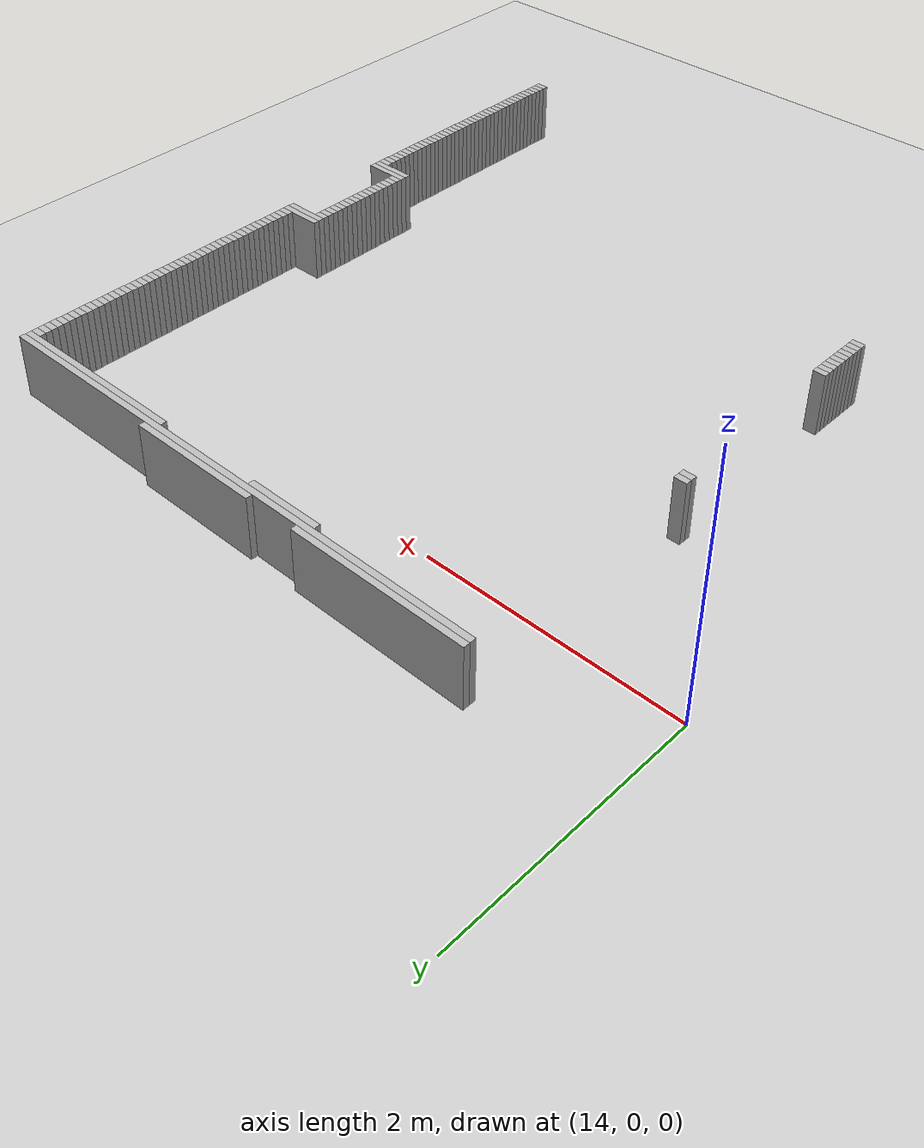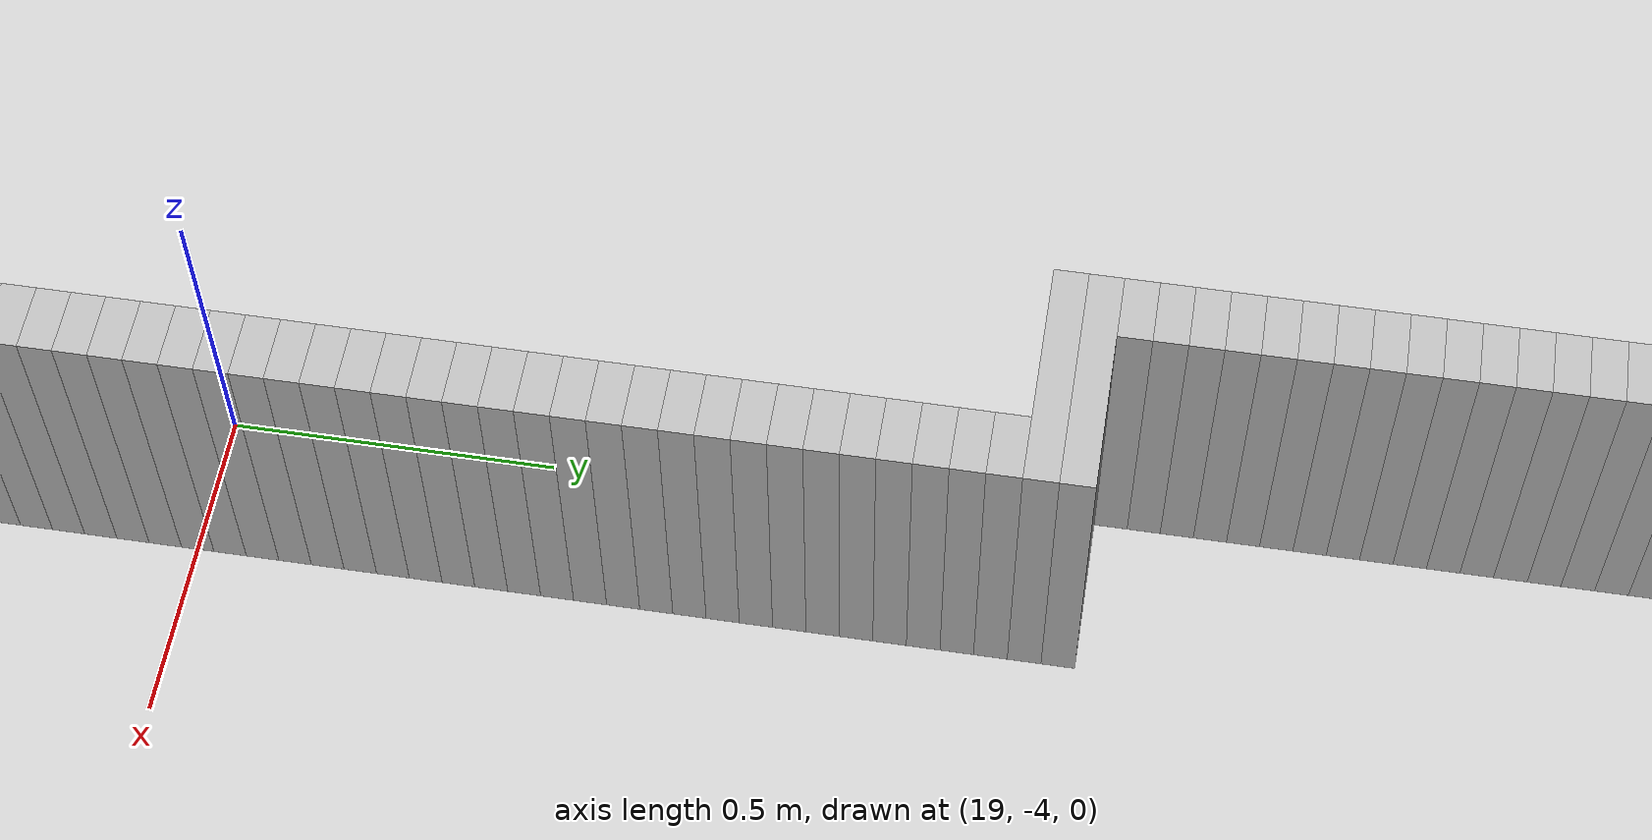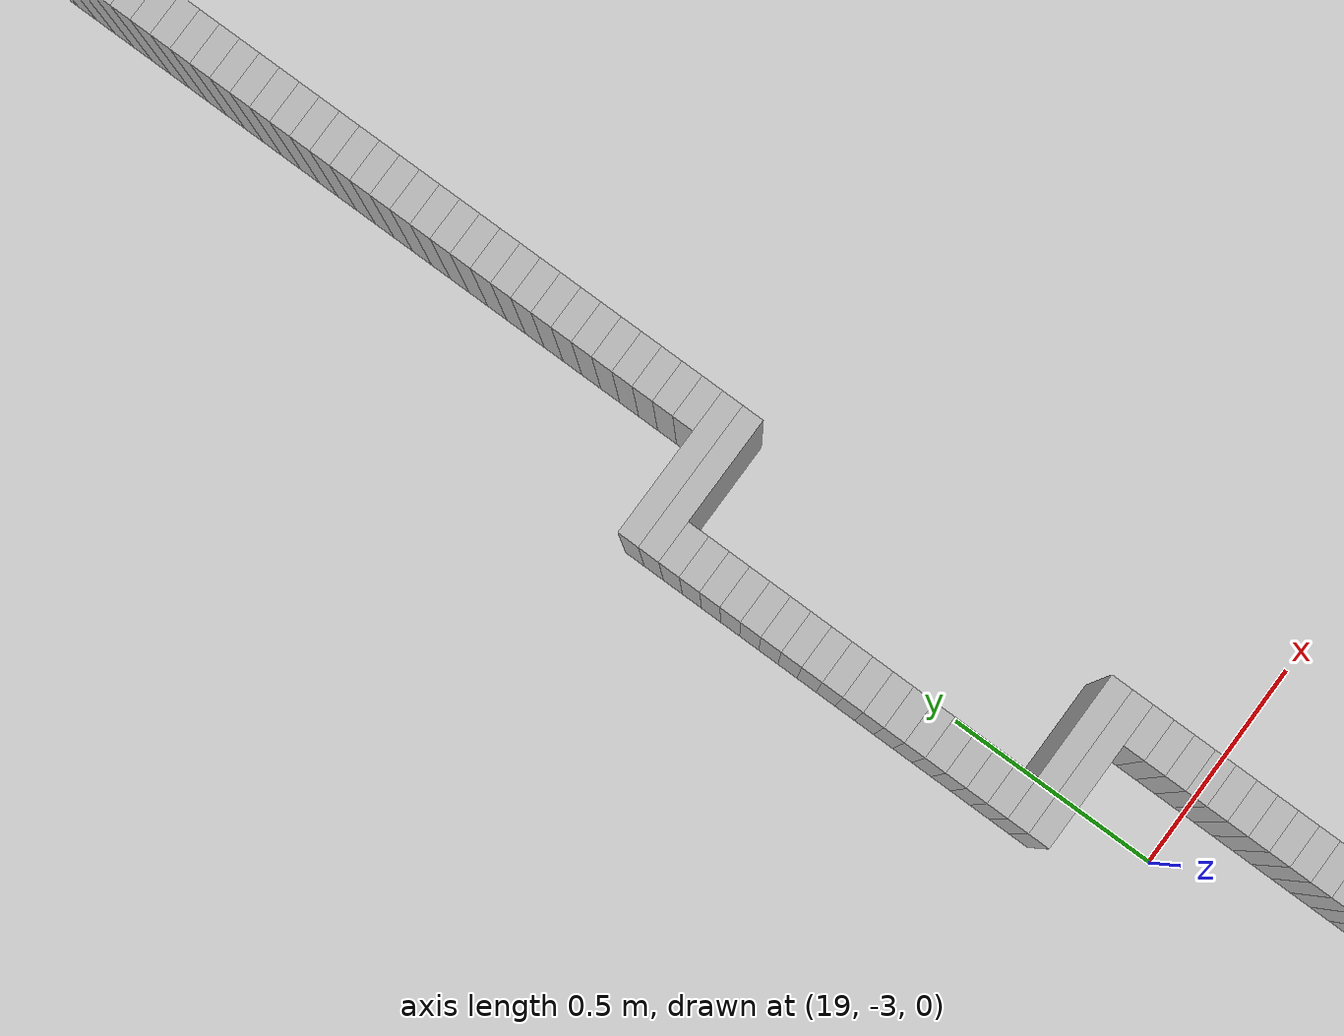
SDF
<sdf version="1.6">
 <world name="optimized_map_world">
  <include><uri>model://sun</uri></include>
  <include><uri>model://ground_plane</uri></include>
  <model name="obstacle_9">
   <static>true</static>
   <link name="link">
    <collision name="collision">
     <geometry><box><size>1.4000000000000001 0.05 0.5</size></box></geometry>
    </collision>
    <visual name="visual"><geometry><box><size>1.4000000000000001 0.05 0.5</size></box></geometry></visual>
   </link>
   <pose>15.675 0.75 0.25 0 0 0</pose>
  </model>
  <model name="obstacle_10">
   <static>true</static>
   <link name="link">
    <collision name="collision"><geometry><box><size>1.05 0.05 0.5</size></box></geometry></collision>
    <visual name="visual"><geometry><box><size>1.05 0.05 0.5</size></box></geometry></visual>
   </link>
   <pose>17.3 0.75 0.25 0 0 0</pose>
  </model>
  <model name="obstacle_15">
   <static>true</static>
   <link name="link">
    <collision name="collision"><geometry><box><size>4.25 0.05 0.5</size></box></geometry></collision>
    <visual name="visual"><geometry><box><size>4.25 0.05 0.5</size></box></geometry></visual>
   </link>
   <pose>17.100000000000005 0.6999999999999993 0.25 0 0 0</pose>
  </model>
  <model name="obstacle_19">
   <static>true</static>
   <link name="link">
    <collision name="collision">
     <geometry><box><size>0.6000000000000001 0.05 0.5</size></box></geometry>
    </collision>
    <visual name="visual"><geometry><box><size>0.6000000000000001 0.05 0.5</size></box></geometry></visual>
   </link>
   <pose>16.575 0.6500000000000021 0.25 0 0 0</pose>
  </model>
  <model name="obstacle_20">
   <static>true</static>
   <link name="link">
    <collision name="collision"><geometry><box><size>1.5 0.05 0.5</size></box></geometry></collision>
    <visual name="visual"><geometry><box><size>1.5 0.05 0.5</size></box></geometry></visual>
   </link>
   <pose>18.475000000000005 0.6500000000000021 0.25 0 0 0</pose>
  </model>
  <model name="obstacle_25">
   <static>true</static>
   <link name="link">
    <collision name="collision"><geometry><box><size>0.1 0.05 0.5</size></box></geometry></collision>
    <visual name="visual"><geometry><box><size>0.1 0.05 0.5</size></box></geometry></visual>
   </link>
   <pose>19.175 0.6000000000000014 0.25 0 0 0</pose>
  </model>
  <model name="obstacle_27">
   <static>true</static>
   <link name="link">
    <collision name="collision"><geometry><box><size>0.1 0.05 0.5</size></box></geometry></collision>
    <visual name="visual"><geometry><box><size>0.1 0.05 0.5</size></box></geometry></visual>
   </link>
   <pose>19.175 0.5500000000000007 0.25 0 0 0</pose>
  </model>
  <model name="obstacle_29">
   <static>true</static>
   <link name="link">
    <collision name="collision"><geometry><box><size>0.1 0.05 0.5</size></box></geometry></collision>
    <visual name="visual"><geometry><box><size>0.1 0.05 0.5</size></box></geometry></visual>
   </link>
   <pose>19.175 0.5 0.25 0 0 0</pose>
  </model>
  <model name="obstacle_31">
   <static>true</static>
   <link name="link">
    <collision name="collision"><geometry><box><size>0.1 0.05 0.5</size></box></geometry></collision>
    <visual name="visual"><geometry><box><size>0.1 0.05 0.5</size></box></geometry></visual>
   </link>
   <pose>19.175 0.4499999999999993 0.25 0 0 0</pose>
  </model>
  <model name="obstacle_33">
   <static>true</static>
   <link name="link">
    <collision name="collision"><geometry><box><size>0.1 0.05 0.5</size></box></geometry></collision>
    <visual name="visual"><geometry><box><size>0.1 0.05 0.5</size></box></geometry></visual>
   </link>
   <pose>19.175 0.40000000000000213 0.25 0 0 0</pose>
  </model>
  <model name="obstacle_35">
   <static>true</static>
   <link name="link">
    <collision name="collision"><geometry><box><size>0.1 0.05 0.5</size></box></geometry></collision>
    <visual name="visual"><geometry><box><size>0.1 0.05 0.5</size></box></geometry></visual>
   </link>
   <pose>19.175 0.3500000000000014 0.25 0 0 0</pose>
  </model>
  <model name="obstacle_37">
   <static>true</static>
   <link name="link">
    <collision name="collision"><geometry><box><size>0.1 0.05 0.5</size></box></geometry></collision>
    <visual name="visual"><geometry><box><size>0.1 0.05 0.5</size></box></geometry></visual>
   </link>
   <pose>19.175 0.3000000000000007 0.25 0 0 0</pose>
  </model>
  <model name="obstacle_39">
   <static>true</static>
   <link name="link">
    <collision name="collision"><geometry><box><size>0.1 0.05 0.5</size></box></geometry></collision>
    <visual name="visual"><geometry><box><size>0.1 0.05 0.5</size></box></geometry></visual>
   </link>
   <pose>19.175 0.25 0.25 0 0 0</pose>
  </model>
  <model name="obstacle_41">
   <static>true</static>
   <link name="link">
    <collision name="collision"><geometry><box><size>0.1 0.05 0.5</size></box></geometry></collision>
    <visual name="visual"><geometry><box><size>0.1 0.05 0.5</size></box></geometry></visual>
   </link>
   <pose>19.175 0.1999999999999993 0.25 0 0 0</pose>
  </model>
  <model name="obstacle_43">
   <static>true</static>
   <link name="link">
    <collision name="collision"><geometry><box><size>0.1 0.05 0.5</size></box></geometry></collision>
    <visual name="visual"><geometry><box><size>0.1 0.05 0.5</size></box></geometry></visual>
   </link>
   <pose>19.175 0.15000000000000213 0.25 0 0 0</pose>
  </model>
  <model name="obstacle_45">
   <static>true</static>
   <link name="link">
    <collision name="collision"><geometry><box><size>0.1 0.05 0.5</size></box></geometry></collision>
    <visual name="visual"><geometry><box><size>0.1 0.05 0.5</size></box></geometry></visual>
   </link>
   <pose>19.175 0.10000000000000142 0.25 0 0 0</pose>
  </model>
  <model name="obstacle_47">
   <static>true</static>
   <link name="link">
    <collision name="collision"><geometry><box><size>0.1 0.05 0.5</size></box></geometry></collision>
    <visual name="visual"><geometry><box><size>0.1 0.05 0.5</size></box></geometry></visual>
   </link>
   <pose>19.175 0.05000000000000071 0.25 0 0 0</pose>
  </model>
  <model name="obstacle_49">
   <static>true</static>
   <link name="link">
    <collision name="collision"><geometry><box><size>0.1 0.05 0.5</size></box></geometry></collision>
    <visual name="visual"><geometry><box><size>0.1 0.05 0.5</size></box></geometry></visual>
   </link>
   <pose>19.175 0.0 0.25 0 0 0</pose>
  </model>
  <model name="obstacle_51">
   <static>true</static>
   <link name="link">
    <collision name="collision"><geometry><box><size>0.1 0.05 0.5</size></box></geometry></collision>
    <visual name="visual"><geometry><box><size>0.1 0.05 0.5</size></box></geometry></visual>
   </link>
   <pose>19.175 -0.05000000000000071 0.25 0 0 0</pose>
  </model>
  <model name="obstacle_53">
   <static>true</static>
   <link name="link">
    <collision name="collision"><geometry><box><size>0.1 0.05 0.5</size></box></geometry></collision>
    <visual name="visual"><geometry><box><size>0.1 0.05 0.5</size></box></geometry></visual>
   </link>
   <pose>19.175 -0.09999999999999787 0.25 0 0 0</pose>
  </model>
  <model name="obstacle_55">
   <static>true</static>
   <link name="link">
    <collision name="collision"><geometry><box><size>0.1 0.05 0.5</size></box></geometry></collision>
    <visual name="visual"><geometry><box><size>0.1 0.05 0.5</size></box></geometry></visual>
   </link>
   <pose>19.175 -0.14999999999999858 0.25 0 0 0</pose>
  </model>
  <model name="obstacle_57">
   <static>true</static>
   <link name="link">
    <collision name="collision"><geometry><box><size>0.1 0.05 0.5</size></box></geometry></collision>
    <visual name="visual"><geometry><box><size>0.1 0.05 0.5</size></box></geometry></visual>
   </link>
   <pose>19.175 -0.1999999999999993 0.25 0 0 0</pose>
  </model>
  <model name="obstacle_59">
   <static>true</static>
   <link name="link">
    <collision name="collision"><geometry><box><size>0.1 0.05 0.5</size></box></geometry></collision>
    <visual name="visual"><geometry><box><size>0.1 0.05 0.5</size></box></geometry></visual>
   </link>
   <pose>19.175 -0.25 0.25 0 0 0</pose>
  </model>
  <model name="obstacle_61">
   <static>true</static>
   <link name="link">
    <collision name="collision"><geometry><box><size>0.1 0.05 0.5</size></box></geometry></collision>
    <visual name="visual"><geometry><box><size>0.1 0.05 0.5</size></box></geometry></visual>
   </link>
   <pose>19.175 -0.3000000000000007 0.25 0 0 0</pose>
  </model>
  <model name="obstacle_63">
   <static>true</static>
   <link name="link">
    <collision name="collision"><geometry><box><size>0.1 0.05 0.5</size></box></geometry></collision>
    <visual name="visual"><geometry><box><size>0.1 0.05 0.5</size></box></geometry></visual>
   </link>
   <pose>19.175 -0.34999999999999787 0.25 0 0 0</pose>
  </model>
  <model name="obstacle_65">
   <static>true</static>
   <link name="link">
    <collision name="collision"><geometry><box><size>0.1 0.05 0.5</size></box></geometry></collision>
    <visual name="visual"><geometry><box><size>0.1 0.05 0.5</size></box></geometry></visual>
   </link>
   <pose>19.175 -0.3999999999999986 0.25 0 0 0</pose>
  </model>
  <model name="obstacle_67">
   <static>true</static>
   <link name="link">
    <collision name="collision"><geometry><box><size>0.1 0.05 0.5</size></box></geometry></collision>
    <visual name="visual"><geometry><box><size>0.1 0.05 0.5</size></box></geometry></visual>
   </link>
   <pose>19.175 -0.4499999999999993 0.25 0 0 0</pose>
  </model>
  <model name="obstacle_69">
   <static>true</static>
   <link name="link">
    <collision name="collision"><geometry><box><size>0.1 0.05 0.5</size></box></geometry></collision>
    <visual name="visual"><geometry><box><size>0.1 0.05 0.5</size></box></geometry></visual>
   </link>
   <pose>19.175 -0.5 0.25 0 0 0</pose>
  </model>
  <model name="obstacle_71">
   <static>true</static>
   <link name="link">
    <collision name="collision"><geometry><box><size>0.1 0.05 0.5</size></box></geometry></collision>
    <visual name="visual"><geometry><box><size>0.1 0.05 0.5</size></box></geometry></visual>
   </link>
   <pose>19.175 -0.5500000000000007 0.25 0 0 0</pose>
  </model>
  <model name="obstacle_73">
   <static>true</static>
   <link name="link">
    <collision name="collision"><geometry><box><size>0.1 0.05 0.5</size></box></geometry></collision>
    <visual name="visual"><geometry><box><size>0.1 0.05 0.5</size></box></geometry></visual>
   </link>
   <pose>19.175 -0.5999999999999979 0.25 0 0 0</pose>
  </model>
  <model name="obstacle_75">
   <static>true</static>
   <link name="link">
    <collision name="collision"><geometry><box><size>0.1 0.05 0.5</size></box></geometry></collision>
    <visual name="visual"><geometry><box><size>0.1 0.05 0.5</size></box></geometry></visual>
   </link>
   <pose>19.175 -0.6499999999999986 0.25 0 0 0</pose>
  </model>
  <model name="obstacle_77">
   <static>true</static>
   <link name="link">
    <collision name="collision"><geometry><box><size>0.1 0.05 0.5</size></box></geometry></collision>
    <visual name="visual"><geometry><box><size>0.1 0.05 0.5</size></box></geometry></visual>
   </link>
   <pose>19.175 -0.6999999999999993 0.25 0 0 0</pose>
  </model>
  <model name="obstacle_79">
   <static>true</static>
   <link name="link">
    <collision name="collision"><geometry><box><size>0.1 0.05 0.5</size></box></geometry></collision>
    <visual name="visual"><geometry><box><size>0.1 0.05 0.5</size></box></geometry></visual>
   </link>
   <pose>19.175 -0.75 0.25 0 0 0</pose>
  </model>
  <model name="obstacle_82">
   <static>true</static>
   <link name="link">
    <collision name="collision"><geometry><box><size>0.1 0.05 0.5</size></box></geometry></collision>
    <visual name="visual"><geometry><box><size>0.1 0.05 0.5</size></box></geometry></visual>
   </link>
   <pose>19.175 -0.8000000000000007 0.25 0 0 0</pose>
  </model>
  <model name="obstacle_86">
   <static>true</static>
   <link name="link">
    <collision name="collision"><geometry><box><size>0.1 0.05 0.5</size></box></geometry></collision>
    <visual name="visual"><geometry><box><size>0.1 0.05 0.5</size></box></geometry></visual>
   </link>
   <pose>19.175 -0.8499999999999979 0.25 0 0 0</pose>
  </model>
  <model name="obstacle_91">
   <static>true</static>
   <link name="link">
    <collision name="collision"><geometry><box><size>0.1 0.05 0.5</size></box></geometry></collision>
    <visual name="visual"><geometry><box><size>0.1 0.05 0.5</size></box></geometry></visual>
   </link>
   <pose>19.175 -0.8999999999999986 0.25 0 0 0</pose>
  </model>
  <model name="obstacle_97">
   <static>true</static>
   <link name="link">
    <collision name="collision"><geometry><box><size>0.1 0.05 0.5</size></box></geometry></collision>
    <visual name="visual"><geometry><box><size>0.1 0.05 0.5</size></box></geometry></visual>
   </link>
   <pose>19.175 -0.9499999999999993 0.25 0 0 0</pose>
  </model>
  <model name="obstacle_104">
   <static>true</static>
   <link name="link">
    <collision name="collision"><geometry><box><size>0.1 0.05 0.5</size></box></geometry></collision>
    <visual name="visual"><geometry><box><size>0.1 0.05 0.5</size></box></geometry></visual>
   </link>
   <pose>19.175 -1.0 0.25 0 0 0</pose>
  </model>
  <model name="obstacle_111">
   <static>true</static>
   <link name="link">
    <collision name="collision"><geometry><box><size>0.1 0.05 0.5</size></box></geometry></collision>
    <visual name="visual"><geometry><box><size>0.1 0.05 0.5</size></box></geometry></visual>
   </link>
   <pose>19.175 -1.0500000000000007 0.25 0 0 0</pose>
  </model>
  <model name="obstacle_118">
   <static>true</static>
   <link name="link">
    <collision name="collision"><geometry><box><size>0.1 0.05 0.5</size></box></geometry></collision>
    <visual name="visual"><geometry><box><size>0.1 0.05 0.5</size></box></geometry></visual>
   </link>
   <pose>19.175 -1.0999999999999979 0.25 0 0 0</pose>
  </model>
  <model name="obstacle_124">
   <static>true</static>
   <link name="link">
    <collision name="collision"><geometry><box><size>0.1 0.05 0.5</size></box></geometry></collision>
    <visual name="visual"><geometry><box><size>0.1 0.05 0.5</size></box></geometry></visual>
   </link>
   <pose>19.175 -1.1499999999999986 0.25 0 0 0</pose>
  </model>
  <model name="obstacle_128">
   <static>true</static>
   <link name="link">
    <collision name="collision"><geometry><box><size>0.1 0.05 0.5</size></box></geometry></collision>
    <visual name="visual"><geometry><box><size>0.1 0.05 0.5</size></box></geometry></visual>
   </link>
   <pose>14.975000000000001 -1.1999999999999993 0.25 0 0 0</pose>
  </model>
  <model name="obstacle_129">
   <static>true</static>
   <link name="link">
    <collision name="collision"><geometry><box><size>0.1 0.05 0.5</size></box></geometry></collision>
    <visual name="visual"><geometry><box><size>0.1 0.05 0.5</size></box></geometry></visual>
   </link>
   <pose>19.175 -1.1999999999999993 0.25 0 0 0</pose>
  </model>
  <model name="obstacle_132">
   <static>true</static>
   <link name="link">
    <collision name="collision"><geometry><box><size>0.1 0.05 0.5</size></box></geometry></collision>
    <visual name="visual"><geometry><box><size>0.1 0.05 0.5</size></box></geometry></visual>
   </link>
   <pose>14.975000000000001 -1.25 0.25 0 0 0</pose>
  </model>
  <model name="obstacle_133">
   <static>true</static>
   <link name="link">
    <collision name="collision"><geometry><box><size>0.1 0.05 0.5</size></box></geometry></collision>
    <visual name="visual"><geometry><box><size>0.1 0.05 0.5</size></box></geometry></visual>
   </link>
   <pose>19.175 -1.25 0.25 0 0 0</pose>
  </model>
  <model name="obstacle_137">
   <static>true</static>
   <link name="link">
    <collision name="collision"><geometry><box><size>0.1 0.05 0.5</size></box></geometry></collision>
    <visual name="visual"><geometry><box><size>0.1 0.05 0.5</size></box></geometry></visual>
   </link>
   <pose>19.175 -1.3000000000000007 0.25 0 0 0</pose>
  </model>
  <model name="obstacle_141">
   <static>true</static>
   <link name="link">
    <collision name="collision"><geometry><box><size>0.1 0.05 0.5</size></box></geometry></collision>
    <visual name="visual"><geometry><box><size>0.1 0.05 0.5</size></box></geometry></visual>
   </link>
   <pose>19.175 -1.3500000000000014 0.25 0 0 0</pose>
  </model>
  <model name="obstacle_145">
   <static>true</static>
   <link name="link">
    <collision name="collision"><geometry><box><size>0.1 0.05 0.5</size></box></geometry></collision>
    <visual name="visual"><geometry><box><size>0.1 0.05 0.5</size></box></geometry></visual>
   </link>
   <pose>19.175 -1.3999999999999986 0.25 0 0 0</pose>
  </model>
  <model name="obstacle_149">
   <static>true</static>
   <link name="link">
    <collision name="collision"><geometry><box><size>0.1 0.05 0.5</size></box></geometry></collision>
    <visual name="visual"><geometry><box><size>0.1 0.05 0.5</size></box></geometry></visual>
   </link>
   <pose>19.175 -1.4499999999999993 0.25 0 0 0</pose>
  </model>
  <model name="obstacle_153">
   <static>true</static>
   <link name="link">
    <collision name="collision"><geometry><box><size>0.1 0.05 0.5</size></box></geometry></collision>
    <visual name="visual"><geometry><box><size>0.1 0.05 0.5</size></box></geometry></visual>
   </link>
   <pose>19.175 -1.5 0.25 0 0 0</pose>
  </model>
  <model name="obstacle_157">
   <static>true</static>
   <link name="link">
    <collision name="collision"><geometry><box><size>0.1 0.05 0.5</size></box></geometry></collision>
    <visual name="visual"><geometry><box><size>0.1 0.05 0.5</size></box></geometry></visual>
   </link>
   <pose>19.175 -1.5500000000000007 0.25 0 0 0</pose>
  </model>
  <model name="obstacle_161">
   <static>true</static>
   <link name="link">
    <collision name="collision"><geometry><box><size>0.1 0.05 0.5</size></box></geometry></collision>
    <visual name="visual"><geometry><box><size>0.1 0.05 0.5</size></box></geometry></visual>
   </link>
   <pose>19.175 -1.6000000000000014 0.25 0 0 0</pose>
  </model>
  <model name="obstacle_165">
   <static>true</static>
   <link name="link">
    <collision name="collision"><geometry><box><size>0.1 0.05 0.5</size></box></geometry></collision>
    <visual name="visual"><geometry><box><size>0.1 0.05 0.5</size></box></geometry></visual>
   </link>
   <pose>19.175 -1.6499999999999986 0.25 0 0 0</pose>
  </model>
  <model name="obstacle_169">
   <static>true</static>
   <link name="link">
    <collision name="collision"><geometry><box><size>0.1 0.05 0.5</size></box></geometry></collision>
    <visual name="visual"><geometry><box><size>0.1 0.05 0.5</size></box></geometry></visual>
   </link>
   <pose>19.175 -1.6999999999999993 0.25 0 0 0</pose>
  </model>
  <model name="obstacle_173">
   <static>true</static>
   <link name="link">
    <collision name="collision">
     <geometry><box><size>0.35000000000000003 0.05 0.5</size></box></geometry>
    </collision>
    <visual name="visual"><geometry><box><size>0.35000000000000003 0.05 0.5</size></box></geometry></visual>
   </link>
   <pose>19.05 -1.75 0.25 0 0 0</pose>
  </model>
  <model name="obstacle_177">
   <static>true</static>
   <link name="link">
    <collision name="collision">
     <geometry><box><size>0.35000000000000003 0.05 0.5</size></box></geometry>
    </collision>
    <visual name="visual"><geometry><box><size>0.35000000000000003 0.05 0.5</size></box></geometry></visual>
   </link>
   <pose>19.05 -1.8000000000000007 0.25 0 0 0</pose>
  </model>
  <model name="obstacle_181">
   <static>true</static>
   <link name="link">
    <collision name="collision"><geometry><box><size>0.1 0.05 0.5</size></box></geometry></collision>
    <visual name="visual"><geometry><box><size>0.1 0.05 0.5</size></box></geometry></visual>
   </link>
   <pose>18.925 -1.8500000000000014 0.25 0 0 0</pose>
  </model>
  <model name="obstacle_185">
   <static>true</static>
   <link name="link">
    <collision name="collision"><geometry><box><size>0.1 0.05 0.5</size></box></geometry></collision>
    <visual name="visual"><geometry><box><size>0.1 0.05 0.5</size></box></geometry></visual>
   </link>
   <pose>18.925 -1.8999999999999986 0.25 0 0 0</pose>
  </model>
  <model name="obstacle_189">
   <static>true</static>
   <link name="link">
    <collision name="collision"><geometry><box><size>0.1 0.05 0.5</size></box></geometry></collision>
    <visual name="visual"><geometry><box><size>0.1 0.05 0.5</size></box></geometry></visual>
   </link>
   <pose>18.925 -1.9499999999999993 0.25 0 0 0</pose>
  </model>
  <model name="obstacle_193">
   <static>true</static>
   <link name="link">
    <collision name="collision"><geometry><box><size>0.1 0.05 0.5</size></box></geometry></collision>
    <visual name="visual"><geometry><box><size>0.1 0.05 0.5</size></box></geometry></visual>
   </link>
   <pose>18.925 -2.0 0.25 0 0 0</pose>
  </model>
  <model name="obstacle_197">
   <static>true</static>
   <link name="link">
    <collision name="collision"><geometry><box><size>0.1 0.05 0.5</size></box></geometry></collision>
    <visual name="visual"><geometry><box><size>0.1 0.05 0.5</size></box></geometry></visual>
   </link>
   <pose>18.925 -2.0500000000000007 0.25 0 0 0</pose>
  </model>
  <model name="obstacle_201">
   <static>true</static>
   <link name="link">
    <collision name="collision"><geometry><box><size>0.1 0.05 0.5</size></box></geometry></collision>
    <visual name="visual"><geometry><box><size>0.1 0.05 0.5</size></box></geometry></visual>
   </link>
   <pose>18.925 -2.1000000000000014 0.25 0 0 0</pose>
  </model>
  <model name="obstacle_205">
   <static>true</static>
   <link name="link">
    <collision name="collision"><geometry><box><size>0.1 0.05 0.5</size></box></geometry></collision>
    <visual name="visual"><geometry><box><size>0.1 0.05 0.5</size></box></geometry></visual>
   </link>
   <pose>18.925 -2.1499999999999986 0.25 0 0 0</pose>
  </model>
  <model name="obstacle_209">
   <static>true</static>
   <link name="link">
    <collision name="collision"><geometry><box><size>0.1 0.05 0.5</size></box></geometry></collision>
    <visual name="visual"><geometry><box><size>0.1 0.05 0.5</size></box></geometry></visual>
   </link>
   <pose>18.925 -2.1999999999999993 0.25 0 0 0</pose>
  </model>
  <model name="obstacle_213">
   <static>true</static>
   <link name="link">
    <collision name="collision"><geometry><box><size>0.1 0.05 0.5</size></box></geometry></collision>
    <visual name="visual"><geometry><box><size>0.1 0.05 0.5</size></box></geometry></visual>
   </link>
   <pose>18.925 -2.25 0.25 0 0 0</pose>
  </model>
  <model name="obstacle_217">
   <static>true</static>
   <link name="link">
    <collision name="collision"><geometry><box><size>0.1 0.05 0.5</size></box></geometry></collision>
    <visual name="visual"><geometry><box><size>0.1 0.05 0.5</size></box></geometry></visual>
   </link>
   <pose>18.925 -2.3000000000000007 0.25 0 0 0</pose>
  </model>
  <model name="obstacle_221">
   <static>true</static>
   <link name="link">
    <collision name="collision"><geometry><box><size>0.1 0.05 0.5</size></box></geometry></collision>
    <visual name="visual"><geometry><box><size>0.1 0.05 0.5</size></box></geometry></visual>
   </link>
   <pose>18.925 -2.3500000000000014 0.25 0 0 0</pose>
  </model>
  <model name="obstacle_225">
   <static>true</static>
   <link name="link">
    <collision name="collision"><geometry><box><size>0.1 0.05 0.5</size></box></geometry></collision>
    <visual name="visual"><geometry><box><size>0.1 0.05 0.5</size></box></geometry></visual>
   </link>
   <pose>18.925 -2.3999999999999986 0.25 0 0 0</pose>
  </model>
  <model name="obstacle_229">
   <static>true</static>
   <link name="link">
    <collision name="collision"><geometry><box><size>0.1 0.05 0.5</size></box></geometry></collision>
    <visual name="visual"><geometry><box><size>0.1 0.05 0.5</size></box></geometry></visual>
   </link>
   <pose>18.925 -2.4499999999999993 0.25 0 0 0</pose>
  </model>
  <model name="obstacle_233">
   <static>true</static>
   <link name="link">
    <collision name="collision"><geometry><box><size>0.1 0.05 0.5</size></box></geometry></collision>
    <visual name="visual"><geometry><box><size>0.1 0.05 0.5</size></box></geometry></visual>
   </link>
   <pose>18.925 -2.5 0.25 0 0 0</pose>
  </model>
  <model name="obstacle_237">
   <static>true</static>
   <link name="link">
    <collision name="collision"><geometry><box><size>0.1 0.05 0.5</size></box></geometry></collision>
    <visual name="visual"><geometry><box><size>0.1 0.05 0.5</size></box></geometry></visual>
   </link>
   <pose>18.925 -2.5500000000000007 0.25 0 0 0</pose>
  </model>
  <model name="obstacle_241">
   <static>true</static>
   <link name="link">
    <collision name="collision"><geometry><box><size>0.1 0.05 0.5</size></box></geometry></collision>
    <visual name="visual"><geometry><box><size>0.1 0.05 0.5</size></box></geometry></visual>
   </link>
   <pose>18.925 -2.6000000000000014 0.25 0 0 0</pose>
  </model>
  <model name="obstacle_245">
   <static>true</static>
   <link name="link">
    <collision name="collision"><geometry><box><size>0.1 0.05 0.5</size></box></geometry></collision>
    <visual name="visual"><geometry><box><size>0.1 0.05 0.5</size></box></geometry></visual>
   </link>
   <pose>18.925 -2.6499999999999986 0.25 0 0 0</pose>
  </model>
  <model name="obstacle_249">
   <static>true</static>
   <link name="link">
    <collision name="collision">
     <geometry><box><size>0.35000000000000003 0.05 0.5</size></box></geometry>
    </collision>
    <visual name="visual"><geometry><box><size>0.35000000000000003 0.05 0.5</size></box></geometry></visual>
   </link>
   <pose>19.05 -2.6999999999999993 0.25 0 0 0</pose>
  </model>
  <model name="obstacle_252">
   <static>true</static>
   <link name="link">
    <collision name="collision"><geometry><box><size>0.1 0.05 0.5</size></box></geometry></collision>
    <visual name="visual"><geometry><box><size>0.1 0.05 0.5</size></box></geometry></visual>
   </link>
   <pose>14.975000000000001 -2.75 0.25 0 0 0</pose>
  </model>
  <model name="obstacle_253">
   <static>true</static>
   <link name="link">
    <collision name="collision">
     <geometry><box><size>0.35000000000000003 0.05 0.5</size></box></geometry>
    </collision>
    <visual name="visual"><geometry><box><size>0.35000000000000003 0.05 0.5</size></box></geometry></visual>
   </link>
   <pose>19.05 -2.75 0.25 0 0 0</pose>
  </model>
  <model name="obstacle_256">
   <static>true</static>
   <link name="link">
    <collision name="collision"><geometry><box><size>0.1 0.05 0.5</size></box></geometry></collision>
    <visual name="visual"><geometry><box><size>0.1 0.05 0.5</size></box></geometry></visual>
   </link>
   <pose>14.975000000000001 -2.8000000000000007 0.25 0 0 0</pose>
  </model>
  <model name="obstacle_257">
   <static>true</static>
   <link name="link">
    <collision name="collision"><geometry><box><size>0.1 0.05 0.5</size></box></geometry></collision>
    <visual name="visual"><geometry><box><size>0.1 0.05 0.5</size></box></geometry></visual>
   </link>
   <pose>19.175 -2.8000000000000007 0.25 0 0 0</pose>
  </model>
  <model name="obstacle_260">
   <static>true</static>
   <link name="link">
    <collision name="collision"><geometry><box><size>0.1 0.05 0.5</size></box></geometry></collision>
    <visual name="visual"><geometry><box><size>0.1 0.05 0.5</size></box></geometry></visual>
   </link>
   <pose>14.975000000000001 -2.8500000000000014 0.25 0 0 0</pose>
  </model>
  <model name="obstacle_261">
   <static>true</static>
   <link name="link">
    <collision name="collision"><geometry><box><size>0.1 0.05 0.5</size></box></geometry></collision>
    <visual name="visual"><geometry><box><size>0.1 0.05 0.5</size></box></geometry></visual>
   </link>
   <pose>19.175 -2.8500000000000014 0.25 0 0 0</pose>
  </model>
  <model name="obstacle_264">
   <static>true</static>
   <link name="link">
    <collision name="collision"><geometry><box><size>0.1 0.05 0.5</size></box></geometry></collision>
    <visual name="visual"><geometry><box><size>0.1 0.05 0.5</size></box></geometry></visual>
   </link>
   <pose>14.975000000000001 -2.8999999999999986 0.25 0 0 0</pose>
  </model>
  <model name="obstacle_265">
   <static>true</static>
   <link name="link">
    <collision name="collision"><geometry><box><size>0.1 0.05 0.5</size></box></geometry></collision>
    <visual name="visual"><geometry><box><size>0.1 0.05 0.5</size></box></geometry></visual>
   </link>
   <pose>19.175 -2.8999999999999986 0.25 0 0 0</pose>
  </model>
  <model name="obstacle_268">
   <static>true</static>
   <link name="link">
    <collision name="collision"><geometry><box><size>0.1 0.05 0.5</size></box></geometry></collision>
    <visual name="visual"><geometry><box><size>0.1 0.05 0.5</size></box></geometry></visual>
   </link>
   <pose>14.975000000000001 -2.9499999999999993 0.25 0 0 0</pose>
  </model>
  <model name="obstacle_269">
   <static>true</static>
   <link name="link">
    <collision name="collision"><geometry><box><size>0.1 0.05 0.5</size></box></geometry></collision>
    <visual name="visual"><geometry><box><size>0.1 0.05 0.5</size></box></geometry></visual>
   </link>
   <pose>19.175 -2.9499999999999993 0.25 0 0 0</pose>
  </model>
  <model name="obstacle_272">
   <static>true</static>
   <link name="link">
    <collision name="collision"><geometry><box><size>0.1 0.05 0.5</size></box></geometry></collision>
    <visual name="visual"><geometry><box><size>0.1 0.05 0.5</size></box></geometry></visual>
   </link>
   <pose>14.975000000000001 -3.0 0.25 0 0 0</pose>
  </model>
  <model name="obstacle_273">
   <static>true</static>
   <link name="link">
    <collision name="collision"><geometry><box><size>0.1 0.05 0.5</size></box></geometry></collision>
    <visual name="visual"><geometry><box><size>0.1 0.05 0.5</size></box></geometry></visual>
   </link>
   <pose>19.175 -3.0 0.25 0 0 0</pose>
  </model>
  <model name="obstacle_276">
   <static>true</static>
   <link name="link">
    <collision name="collision"><geometry><box><size>0.1 0.05 0.5</size></box></geometry></collision>
    <visual name="visual"><geometry><box><size>0.1 0.05 0.5</size></box></geometry></visual>
   </link>
   <pose>14.975000000000001 -3.0500000000000007 0.25 0 0 0</pose>
  </model>
  <model name="obstacle_277">
   <static>true</static>
   <link name="link">
    <collision name="collision"><geometry><box><size>0.1 0.05 0.5</size></box></geometry></collision>
    <visual name="visual"><geometry><box><size>0.1 0.05 0.5</size></box></geometry></visual>
   </link>
   <pose>19.175 -3.0500000000000007 0.25 0 0 0</pose>
  </model>
  <model name="obstacle_280">
   <static>true</static>
   <link name="link">
    <collision name="collision"><geometry><box><size>0.1 0.05 0.5</size></box></geometry></collision>
    <visual name="visual"><geometry><box><size>0.1 0.05 0.5</size></box></geometry></visual>
   </link>
   <pose>14.975000000000001 -3.1000000000000014 0.25 0 0 0</pose>
  </model>
  <model name="obstacle_281">
   <static>true</static>
   <link name="link">
    <collision name="collision"><geometry><box><size>0.1 0.05 0.5</size></box></geometry></collision>
    <visual name="visual"><geometry><box><size>0.1 0.05 0.5</size></box></geometry></visual>
   </link>
   <pose>19.175 -3.1000000000000014 0.25 0 0 0</pose>
  </model>
  <model name="obstacle_284">
   <static>true</static>
   <link name="link">
    <collision name="collision"><geometry><box><size>0.1 0.05 0.5</size></box></geometry></collision>
    <visual name="visual"><geometry><box><size>0.1 0.05 0.5</size></box></geometry></visual>
   </link>
   <pose>14.975000000000001 -3.1499999999999986 0.25 0 0 0</pose>
  </model>
  <model name="obstacle_285">
   <static>true</static>
   <link name="link">
    <collision name="collision"><geometry><box><size>0.1 0.05 0.5</size></box></geometry></collision>
    <visual name="visual"><geometry><box><size>0.1 0.05 0.5</size></box></geometry></visual>
   </link>
   <pose>19.175 -3.1499999999999986 0.25 0 0 0</pose>
  </model>
  <model name="obstacle_288">
   <static>true</static>
   <link name="link">
    <collision name="collision"><geometry><box><size>0.1 0.05 0.5</size></box></geometry></collision>
    <visual name="visual"><geometry><box><size>0.1 0.05 0.5</size></box></geometry></visual>
   </link>
   <pose>14.975000000000001 -3.1999999999999993 0.25 0 0 0</pose>
  </model>
  <model name="obstacle_289">
   <static>true</static>
   <link name="link">
    <collision name="collision"><geometry><box><size>0.1 0.05 0.5</size></box></geometry></collision>
    <visual name="visual"><geometry><box><size>0.1 0.05 0.5</size></box></geometry></visual>
   </link>
   <pose>19.175 -3.1999999999999993 0.25 0 0 0</pose>
  </model>
  <model name="obstacle_293">
   <static>true</static>
   <link name="link">
    <collision name="collision"><geometry><box><size>0.1 0.05 0.5</size></box></geometry></collision>
    <visual name="visual"><geometry><box><size>0.1 0.05 0.5</size></box></geometry></visual>
   </link>
   <pose>19.175 -3.25 0.25 0 0 0</pose>
  </model>
  <model name="obstacle_297">
   <static>true</static>
   <link name="link">
    <collision name="collision"><geometry><box><size>0.1 0.05 0.5</size></box></geometry></collision>
    <visual name="visual"><geometry><box><size>0.1 0.05 0.5</size></box></geometry></visual>
   </link>
   <pose>19.175 -3.3000000000000007 0.25 0 0 0</pose>
  </model>
  <model name="obstacle_301">
   <static>true</static>
   <link name="link">
    <collision name="collision"><geometry><box><size>0.1 0.05 0.5</size></box></geometry></collision>
    <visual name="visual"><geometry><box><size>0.1 0.05 0.5</size></box></geometry></visual>
   </link>
   <pose>19.175 -3.3500000000000014 0.25 0 0 0</pose>
  </model>
  <model name="obstacle_305">
   <static>true</static>
   <link name="link">
    <collision name="collision"><geometry><box><size>0.1 0.05 0.5</size></box></geometry></collision>
    <visual name="visual"><geometry><box><size>0.1 0.05 0.5</size></box></geometry></visual>
   </link>
   <pose>19.175 -3.3999999999999986 0.25 0 0 0</pose>
  </model>
  <model name="obstacle_309">
   <static>true</static>
   <link name="link">
    <collision name="collision"><geometry><box><size>0.1 0.05 0.5</size></box></geometry></collision>
    <visual name="visual"><geometry><box><size>0.1 0.05 0.5</size></box></geometry></visual>
   </link>
   <pose>19.175 -3.4499999999999993 0.25 0 0 0</pose>
  </model>
  <model name="obstacle_313">
   <static>true</static>
   <link name="link">
    <collision name="collision"><geometry><box><size>0.1 0.05 0.5</size></box></geometry></collision>
    <visual name="visual"><geometry><box><size>0.1 0.05 0.5</size></box></geometry></visual>
   </link>
   <pose>19.175 -3.5 0.25 0 0 0</pose>
  </model>
  <model name="obstacle_317">
   <static>true</static>
   <link name="link">
    <collision name="collision"><geometry><box><size>0.1 0.05 0.5</size></box></geometry></collision>
    <visual name="visual"><geometry><box><size>0.1 0.05 0.5</size></box></geometry></visual>
   </link>
   <pose>19.175 -3.5500000000000007 0.25 0 0 0</pose>
  </model>
  <model name="obstacle_321">
   <static>true</static>
   <link name="link">
    <collision name="collision"><geometry><box><size>0.1 0.05 0.5</size></box></geometry></collision>
    <visual name="visual"><geometry><box><size>0.1 0.05 0.5</size></box></geometry></visual>
   </link>
   <pose>19.175 -3.6000000000000014 0.25 0 0 0</pose>
  </model>
  <model name="obstacle_325">
   <static>true</static>
   <link name="link">
    <collision name="collision"><geometry><box><size>0.1 0.05 0.5</size></box></geometry></collision>
    <visual name="visual"><geometry><box><size>0.1 0.05 0.5</size></box></geometry></visual>
   </link>
   <pose>19.175 -3.6499999999999986 0.25 0 0 0</pose>
  </model>
  <model name="obstacle_329">
   <static>true</static>
   <link name="link">
    <collision name="collision"><geometry><box><size>0.1 0.05 0.5</size></box></geometry></collision>
    <visual name="visual"><geometry><box><size>0.1 0.05 0.5</size></box></geometry></visual>
   </link>
   <pose>19.175 -3.6999999999999993 0.25 0 0 0</pose>
  </model>
  <model name="obstacle_333">
   <static>true</static>
   <link name="link">
    <collision name="collision"><geometry><box><size>0.1 0.05 0.5</size></box></geometry></collision>
    <visual name="visual"><geometry><box><size>0.1 0.05 0.5</size></box></geometry></visual>
   </link>
   <pose>19.175 -3.75 0.25 0 0 0</pose>
  </model>
  <model name="obstacle_337">
   <static>true</static>
   <link name="link">
    <collision name="collision"><geometry><box><size>0.1 0.05 0.5</size></box></geometry></collision>
    <visual name="visual"><geometry><box><size>0.1 0.05 0.5</size></box></geometry></visual>
   </link>
   <pose>19.175 -3.8000000000000007 0.25 0 0 0</pose>
  </model>
  <model name="obstacle_341">
   <static>true</static>
   <link name="link">
    <collision name="collision"><geometry><box><size>0.1 0.05 0.5</size></box></geometry></collision>
    <visual name="visual"><geometry><box><size>0.1 0.05 0.5</size></box></geometry></visual>
   </link>
   <pose>19.175 -3.8500000000000014 0.25 0 0 0</pose>
  </model>
  <model name="obstacle_345">
   <static>true</static>
   <link name="link">
    <collision name="collision"><geometry><box><size>0.1 0.05 0.5</size></box></geometry></collision>
    <visual name="visual"><geometry><box><size>0.1 0.05 0.5</size></box></geometry></visual>
   </link>
   <pose>19.175 -3.8999999999999986 0.25 0 0 0</pose>
  </model>
  <model name="obstacle_349">
   <static>true</static>
   <link name="link">
    <collision name="collision"><geometry><box><size>0.1 0.05 0.5</size></box></geometry></collision>
    <visual name="visual"><geometry><box><size>0.1 0.05 0.5</size></box></geometry></visual>
   </link>
   <pose>19.175 -3.9499999999999993 0.25 0 0 0</pose>
  </model>
  <model name="obstacle_353">
   <static>true</static>
   <link name="link">
    <collision name="collision"><geometry><box><size>0.1 0.05 0.5</size></box></geometry></collision>
    <visual name="visual"><geometry><box><size>0.1 0.05 0.5</size></box></geometry></visual>
   </link>
   <pose>19.175 -4.0 0.25 0 0 0</pose>
  </model>
  <model name="obstacle_357">
   <static>true</static>
   <link name="link">
    <collision name="collision"><geometry><box><size>0.1 0.05 0.5</size></box></geometry></collision>
    <visual name="visual"><geometry><box><size>0.1 0.05 0.5</size></box></geometry></visual>
   </link>
   <pose>19.175 -4.050000000000001 0.25 0 0 0</pose>
  </model>
  <model name="obstacle_361">
   <static>true</static>
   <link name="link">
    <collision name="collision"><geometry><box><size>0.1 0.05 0.5</size></box></geometry></collision>
    <visual name="visual"><geometry><box><size>0.1 0.05 0.5</size></box></geometry></visual>
   </link>
   <pose>19.175 -4.100000000000001 0.25 0 0 0</pose>
  </model>
  <model name="obstacle_365">
   <static>true</static>
   <link name="link">
    <collision name="collision"><geometry><box><size>0.1 0.05 0.5</size></box></geometry></collision>
    <visual name="visual"><geometry><box><size>0.1 0.05 0.5</size></box></geometry></visual>
   </link>
   <pose>19.175 -4.149999999999999 0.25 0 0 0</pose>
  </model>
  <model name="obstacle_369">
   <static>true</static>
   <link name="link">
    <collision name="collision"><geometry><box><size>0.1 0.05 0.5</size></box></geometry></collision>
    <visual name="visual"><geometry><box><size>0.1 0.05 0.5</size></box></geometry></visual>
   </link>
   <pose>19.175 -4.199999999999999 0.25 0 0 0</pose>
  </model>
  <model name="obstacle_373">
   <static>true</static>
   <link name="link">
    <collision name="collision"><geometry><box><size>0.1 0.05 0.5</size></box></geometry></collision>
    <visual name="visual"><geometry><box><size>0.1 0.05 0.5</size></box></geometry></visual>
   </link>
   <pose>19.175 -4.25 0.25 0 0 0</pose>
  </model>
  <model name="obstacle_377">
   <static>true</static>
   <link name="link">
    <collision name="collision"><geometry><box><size>0.1 0.05 0.5</size></box></geometry></collision>
    <visual name="visual"><geometry><box><size>0.1 0.05 0.5</size></box></geometry></visual>
   </link>
   <pose>19.175 -4.300000000000001 0.25 0 0 0</pose>
  </model>
  <model name="obstacle_381">
   <static>true</static>
   <link name="link">
    <collision name="collision"><geometry><box><size>0.1 0.05 0.5</size></box></geometry></collision>
    <visual name="visual"><geometry><box><size>0.1 0.05 0.5</size></box></geometry></visual>
   </link>
   <pose>19.175 -4.35 0.25 0 0 0</pose>
  </model>
  <model name="obstacle_385">
   <static>true</static>
   <link name="link">
    <collision name="collision"><geometry><box><size>0.1 0.05 0.5</size></box></geometry></collision>
    <visual name="visual"><geometry><box><size>0.1 0.05 0.5</size></box></geometry></visual>
   </link>
   <pose>19.175 -4.4 0.25 0 0 0</pose>
  </model>
  <model name="obstacle_389">
   <static>true</static>
   <link name="link">
    <collision name="collision"><geometry><box><size>0.1 0.05 0.5</size></box></geometry></collision>
    <visual name="visual"><geometry><box><size>0.1 0.05 0.5</size></box></geometry></visual>
   </link>
   <pose>19.175 -4.449999999999999 0.25 0 0 0</pose>
  </model>
  <model name="obstacle_393">
   <static>true</static>
   <link name="link">
    <collision name="collision"><geometry><box><size>0.1 0.05 0.5</size></box></geometry></collision>
    <visual name="visual"><geometry><box><size>0.1 0.05 0.5</size></box></geometry></visual>
   </link>
   <pose>19.175 -4.5 0.25 0 0 0</pose>
  </model>
  <model name="obstacle_397">
   <static>true</static>
   <link name="link">
    <collision name="collision"><geometry><box><size>0.1 0.05 0.5</size></box></geometry></collision>
    <visual name="visual"><geometry><box><size>0.1 0.05 0.5</size></box></geometry></visual>
   </link>
   <pose>19.175 -4.550000000000001 0.25 0 0 0</pose>
  </model>
  <model name="obstacle_401">
   <static>true</static>
   <link name="link">
    <collision name="collision"><geometry><box><size>0.1 0.05 0.5</size></box></geometry></collision>
    <visual name="visual"><geometry><box><size>0.1 0.05 0.5</size></box></geometry></visual>
   </link>
   <pose>19.175 -4.6 0.25 0 0 0</pose>
  </model>
  <model name="obstacle_405">
   <static>true</static>
   <link name="link">
    <collision name="collision"><geometry><box><size>0.1 0.05 0.5</size></box></geometry></collision>
    <visual name="visual"><geometry><box><size>0.1 0.05 0.5</size></box></geometry></visual>
   </link>
   <pose>19.175 -4.65 0.25 0 0 0</pose>
  </model>
  <model name="obstacle_409">
   <static>true</static>
   <link name="link">
    <collision name="collision"><geometry><box><size>0.1 0.05 0.5</size></box></geometry></collision>
    <visual name="visual"><geometry><box><size>0.1 0.05 0.5</size></box></geometry></visual>
   </link>
   <pose>19.175 -4.699999999999999 0.25 0 0 0</pose>
  </model>
  <model name="obstacle_413">
   <static>true</static>
   <link name="link">
    <collision name="collision"><geometry><box><size>0.1 0.05 0.5</size></box></geometry></collision>
    <visual name="visual"><geometry><box><size>0.1 0.05 0.5</size></box></geometry></visual>
   </link>
   <pose>19.175 -4.75 0.25 0 0 0</pose>
  </model>
 </world>
</sdf>
